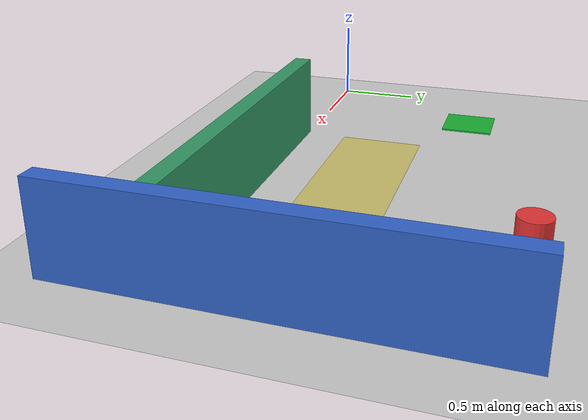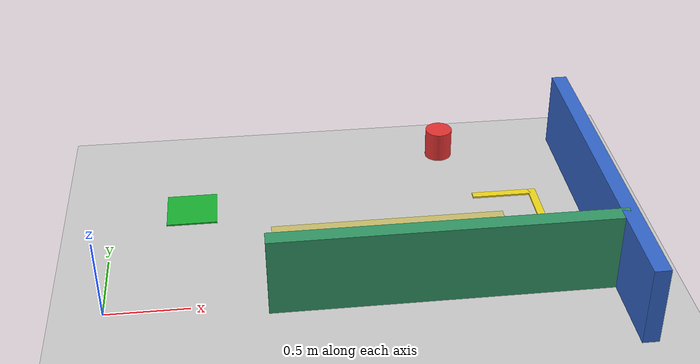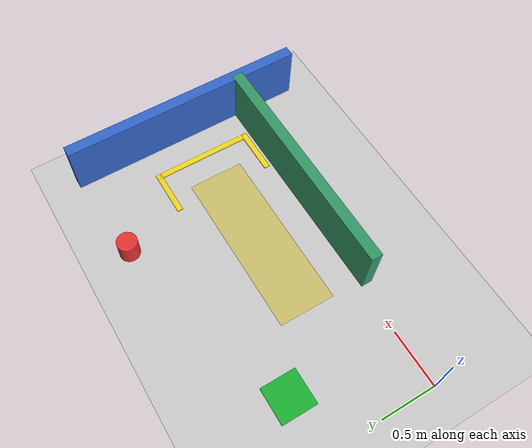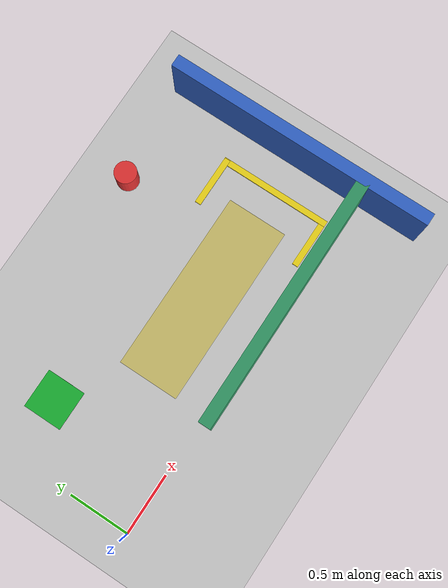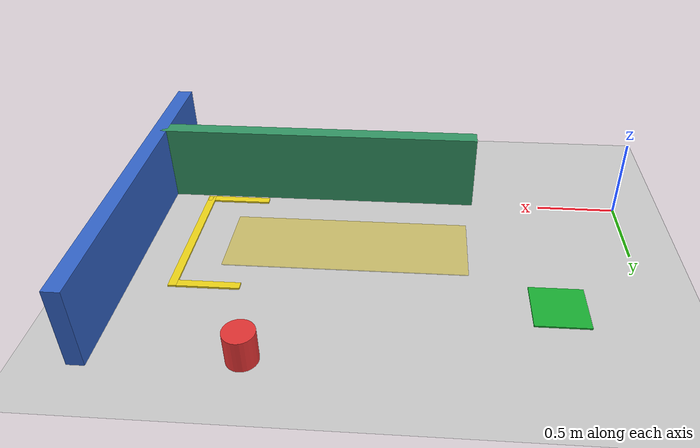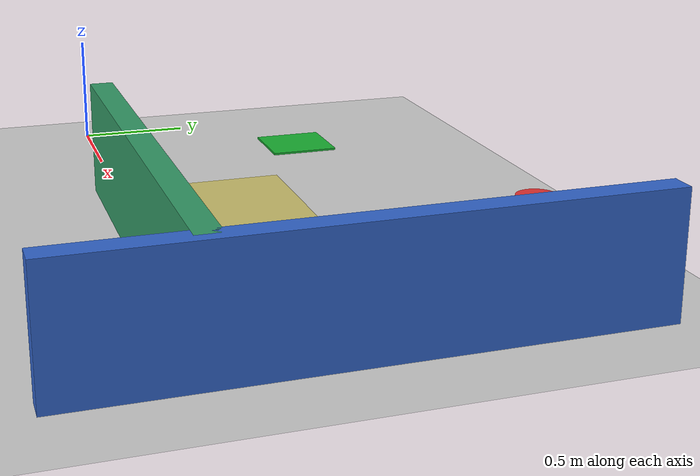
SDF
<?xml version="1.0" ?>
<sdf version="1.6">
  <world name="docking_world">

    <plugin name="gazebo_ros_state" filename="libgazebo_ros_state.so">
      <ros>
        <namespace>/dock</namespace>
      </ros>
      <update_rate>50.0</update_rate>
    </plugin>

    <include>
      <uri>model://sun</uri>
    </include>
    <include>
      <uri>model://ground_plane</uri>
    </include>

    <scene>
      <ambient>0.4 0.4 0.4 1</ambient>
      <background>0.7 0.7 0.7 1</background>
      <shadows>false</shadows>
    </scene>

    <!-- ============ Dock face wall (target the robot drives toward) ======= -->
    <model name="dock_face_wall">
      <static>true</static>
      <pose>3.05 0.5 0.25 0 0 0</pose>
      <link name="link">
        <collision name="collision">
          <geometry>
            <box><size>0.1 2.2 0.5</size></box>
          </geometry>
        </collision>
        <visual name="visual">
          <geometry>
            <box><size>0.1 2.2 0.5</size></box>
          </geometry>
          <material>
            <ambient>0.2 0.4 0.8 1</ambient>
            <diffuse>0.2 0.4 0.8 1</diffuse>
          </material>
        </visual>
      </link>
    </model>

    <!-- ============ Side wall (provides lateral / corner reference) ======= -->
    <model name="dock_side_wall">
      <static>true</static>
      <pose>2.0 -0.05 0.25 0 0 0</pose>
      <link name="link">
        <collision name="collision">
          <geometry>
            <box><size>2.1 0.1 0.5</size></box>
          </geometry>
        </collision>
        <visual name="visual">
          <geometry>
            <box><size>2.1 0.1 0.5</size></box>
          </geometry>
          <material>
            <ambient>0.2 0.6 0.4 1</ambient>
            <diffuse>0.2 0.6 0.4 1</diffuse>
          </material>
        </visual>
      </link>
    </model>

    <!-- ============ Small moving obstacle (driven by disturbance node) ==== -->
    <model name="moving_obstacle">
      <static>false</static>
      <pose>2.2 1.5 0.1 0 0 0</pose>
      <link name="link">
        <inertial>
          <mass>2.0</mass>
          <inertia>
            <ixx>0.02</ixx><iyy>0.02</iyy><izz>0.02</izz>
            <ixy>0</ixy><ixz>0</ixz><iyz>0</iyz>
          </inertia>
        </inertial>
        <collision name="collision">
          <geometry>
            <cylinder><radius>0.09</radius><length>0.2</length></cylinder>
          </geometry>
        </collision>
        <visual name="visual">
          <geometry>
            <cylinder><radius>0.09</radius><length>0.2</length></cylinder>
          </geometry>
          <material>
            <ambient>0.9 0.2 0.2 1</ambient>
            <diffuse>0.9 0.2 0.2 1</diffuse>
          </material>
        </visual>
      </link>
    </model>

    <!-- Pre-dock handoff marker: where the (simulated) nav stack drops the
         robot before the LiDAR docking layer takes over. -->
    <model name="predock_marker">
      <static>true</static>
      <pose>0.5 1.0 0.006 0 0 0</pose>
      <link name="link">
        <visual name="visual">
          <geometry>
            <box><size>0.32 0.32 0.01</size></box>
          </geometry>
          <material>
            <ambient>0.1 0.7 0.2 1</ambient>
            <diffuse>0.1 0.7 0.2 1</diffuse>
          </material>
        </visual>
      </link>
    </model>

    <!-- Final-approach lane: the corridor the docking controller refines along. -->
    <model name="approach_lane">
      <static>true</static>
      <pose>1.75 0.5 0.004 0 0 0</pose>
      <link name="link">
        <visual name="visual">
          <geometry>
            <box><size>1.5 0.5 0.006</size></box>
          </geometry>
          <material>
            <ambient>0.85 0.75 0.1 0.5</ambient>
            <diffuse>0.85 0.75 0.1 0.5</diffuse>
          </material>
        </visual>
      </link>
    </model>

    <model name="docking_bay_outline">
      <static>true</static>
      <pose>0 0 0 0 0 0</pose>
      <!-- Back edge (dock-face side, +x) -->
      <link name="back">
        <pose>2.74 0.5 0.008 0 0 0</pose>
        <visual name="visual">
          <geometry>
            <box><size>0.05 0.94 0.012</size></box>
          </geometry>
          <material>
            <ambient>0.95 0.85 0.1 1</ambient>
            <diffuse>0.95 0.85 0.1 1</diffuse>
          </material>
        </visual>
      </link>
      <!-- +y side edge -->
      <link name="side_left">
        <pose>2.55 0.945 0.008 0 0 0</pose>
        <visual name="visual">
          <geometry>
            <box><size>0.42 0.05 0.012</size></box>
          </geometry>
          <material>
            <ambient>0.95 0.85 0.1 1</ambient>
            <diffuse>0.95 0.85 0.1 1</diffuse>
          </material>
        </visual>
      </link>
      <!-- -y side edge -->
      <link name="side_right">
        <pose>2.55 0.055 0.008 0 0 0</pose>
        <visual name="visual">
          <geometry>
            <box><size>0.42 0.05 0.012</size></box>
          </geometry>
          <material>
            <ambient>0.95 0.85 0.1 1</ambient>
            <diffuse>0.95 0.85 0.1 1</diffuse>
          </material>
        </visual>
      </link>
    </model>

    <gui>
      <camera name="user_camera">
        <pose>0.0 0.5 4.5 0 1.4 0</pose>
      </camera>
    </gui>

  </world>
</sdf>
